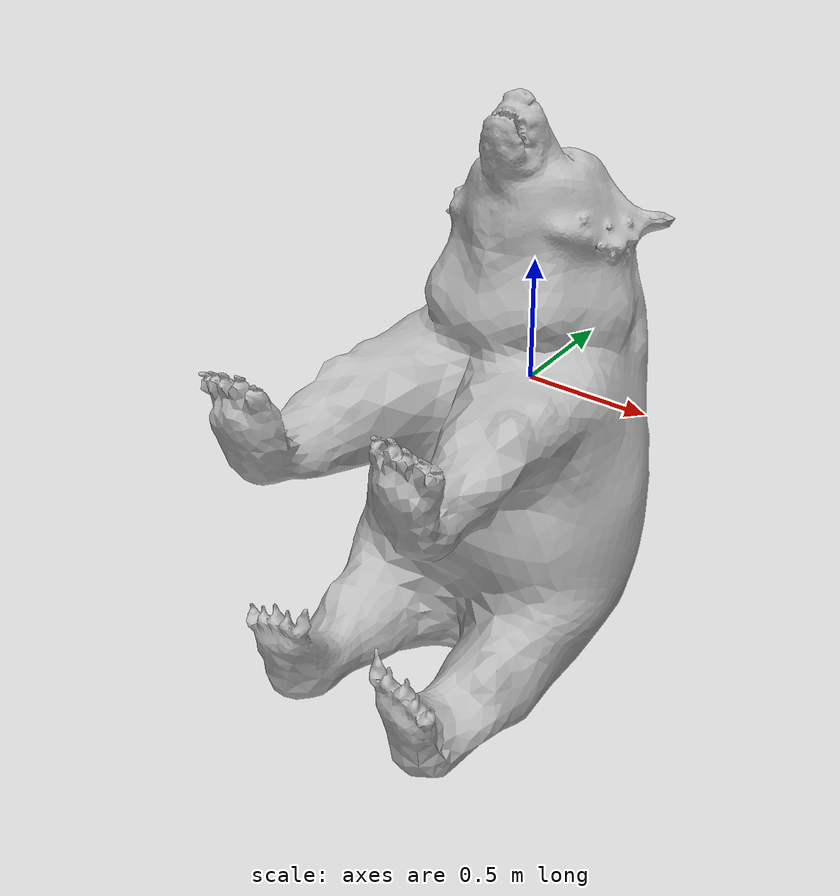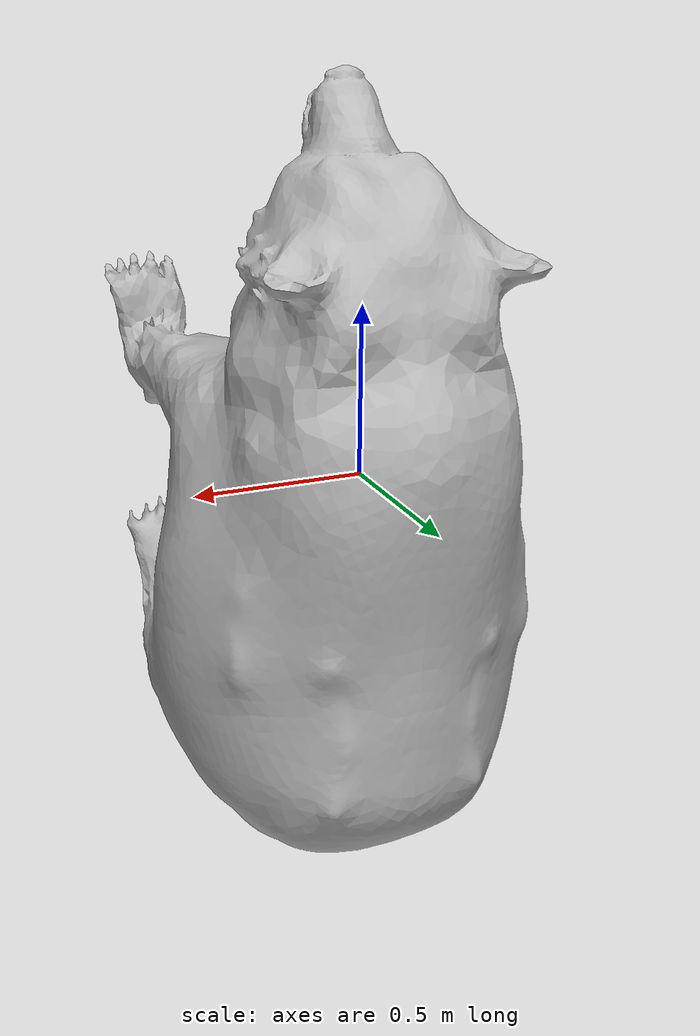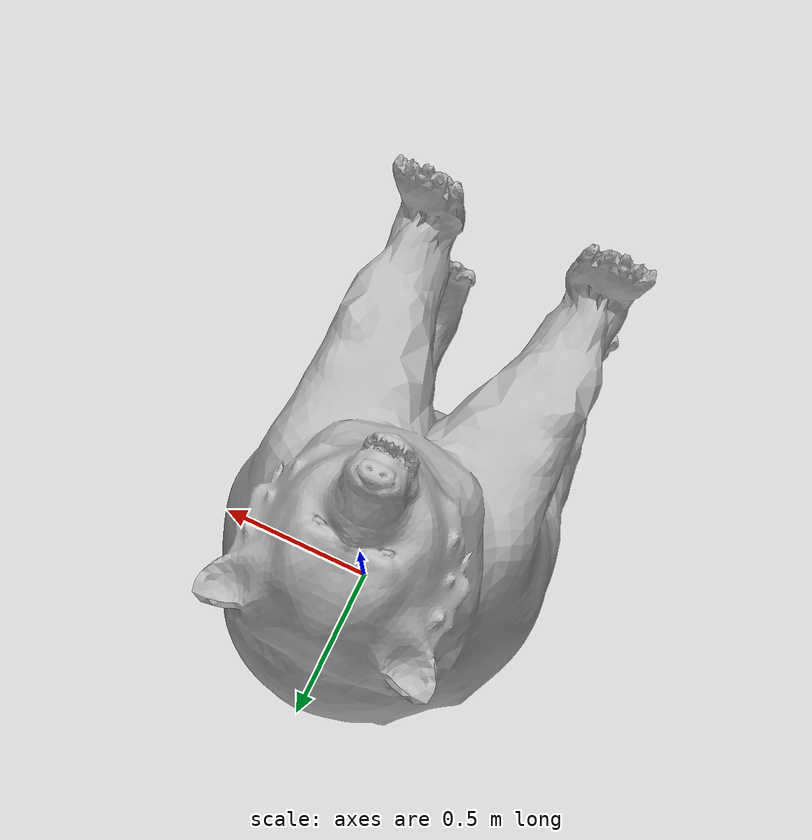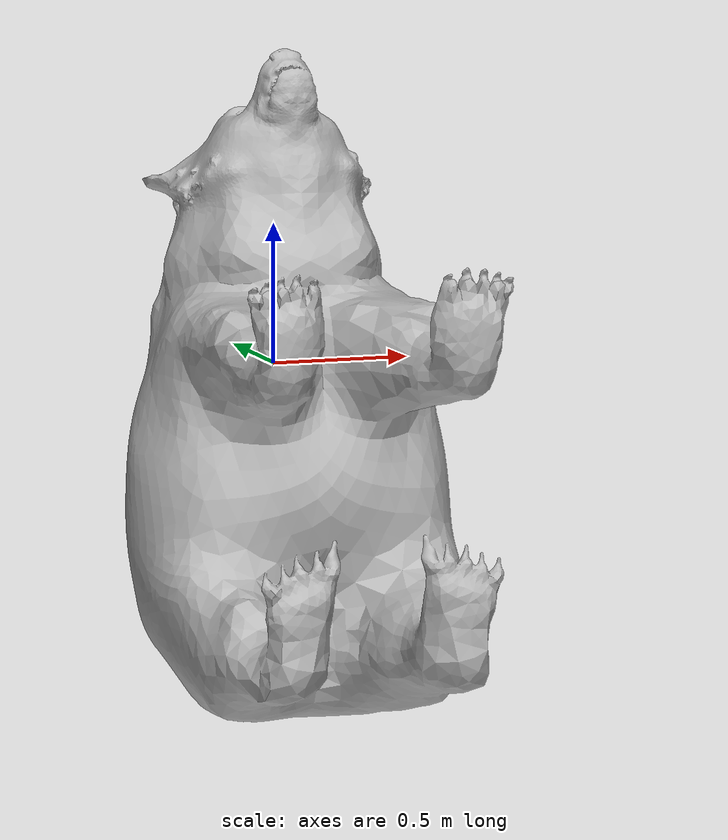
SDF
<?xml version="1.0" ?>
<sdf version="1.6">
  <model name="bearv1">
    <static>true</static>
    <link name="bear_link">

      <!-- Visual representation -->
      <visual name="bear_visual">
        <geometry>
          <mesh>
            <uri>package://41068_ignition_bringup/models/Animal_Models/bear/meshes/bearv1/bearv1.obj</uri>
            <scale>0.5 0.5 0.5</scale>
          </mesh>
        </geometry>
      </visual>

      <!-- Collision geometry -->
      <collision name="bear_collision">
        <geometry>
          <mesh>
            <uri>package://41068_ignition_bringup/models/Animal_Models/bear/meshes/bearv1/bearv1.obj</uri>
            <scale>0.5 0.5 0.5</scale>
          </mesh>
        </geometry>
      </collision>

      <material>
        <pbr>
          <metal>
            <albedo_map>package://41068_ignition_bringup/models/Animal_Models/bear/meshes/bearv1/texture.png</albedo_map>
          </metal>
        </pbr>
      </material>

    </link>
  </model>
</sdf>
